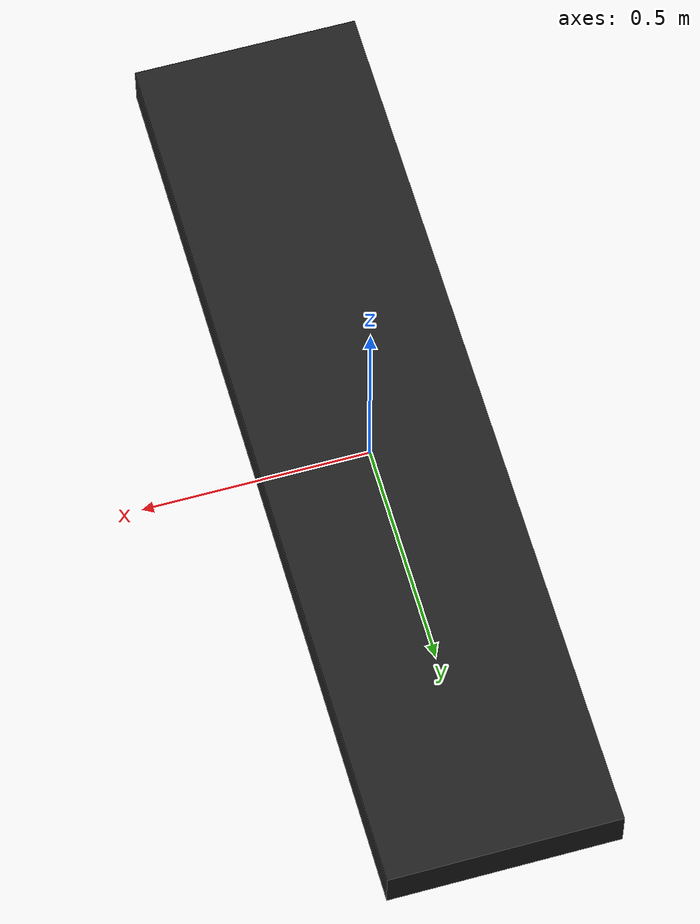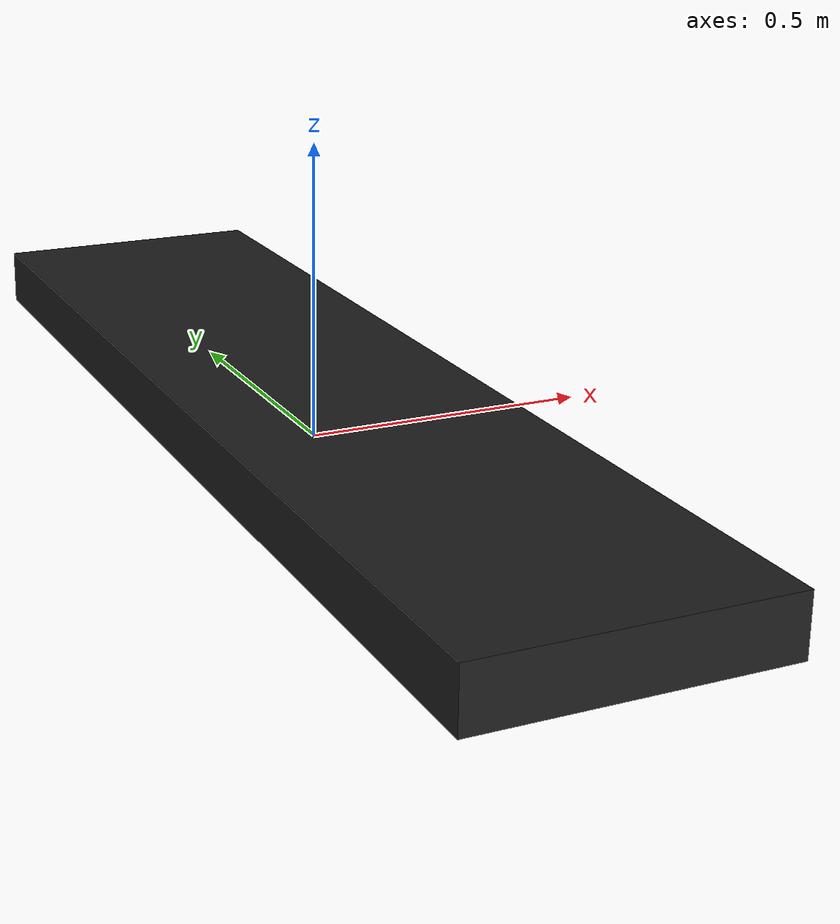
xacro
<?xml version="1.0"?>

<robot xmlns:xacro="http://ros.org/wiki/xacro"
name="ur5_vacuum_conveyor">

<link name="conveyor_base">
  <visual>
    <origin xyz="0 0 0" rpy="0 0 0"/>
    <geometry>
      <box size="0.5 2 0.1"/>
    </geometry>
  </visual>
  <collision>
    <origin xyz="0 0 0" rpy="0 0 0"/>
    <geometry>
      <box size="0.5 2 0.1"/>
    </geometry>
  </collision>

  <inertial>
    <origin xyz="0 0 0" rpy="0 0 0"/>
    <mass value="5"/>
    <inertia  ixx="1" ixy = "0" ixz = "0"
	      iyy="1" iyz = "0"
	      izz="1" />
  </inertial>
</link>

<gazebo reference="conveyor_base">
  <mu1>1</mu1>
  <mu2>1</mu2>
  <material>Gazebo/FlatBlack</material>
</gazebo>

<link name="world" />
<joint name="conveyor_joint" type="fixed">
  <parent link="world" />
  <child link = "conveyor_base" />
  <origin xyz="0 0 0.05" rpy="0.0 0.0 0.0" />
</joint>
</robot>
